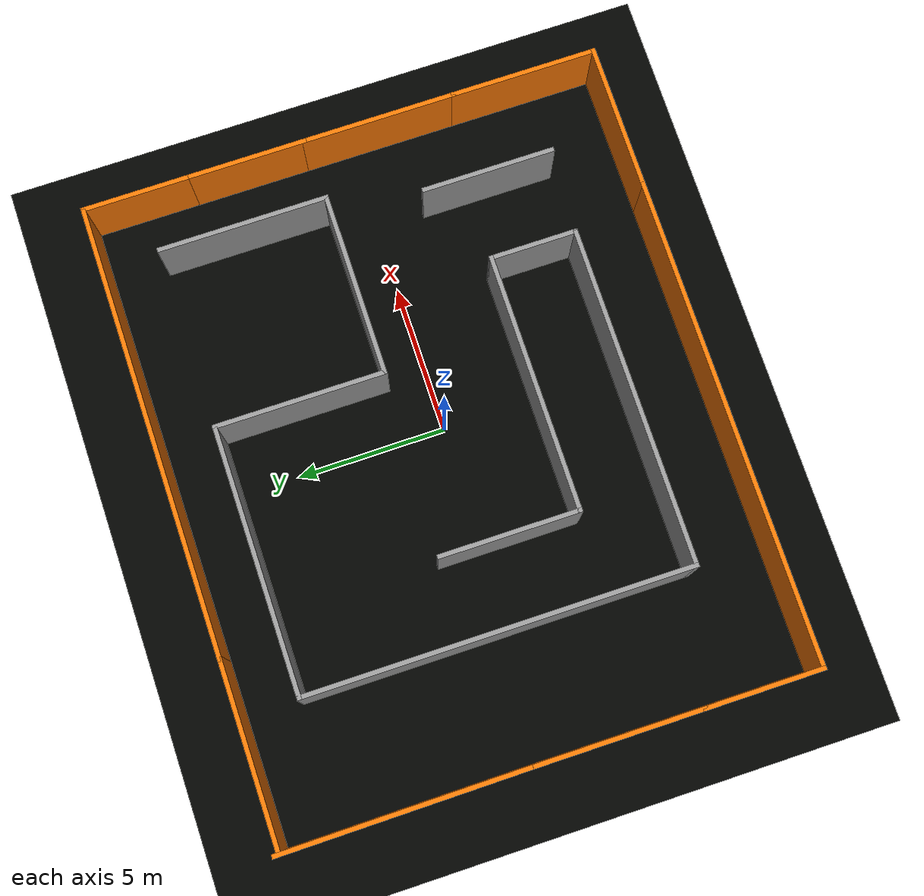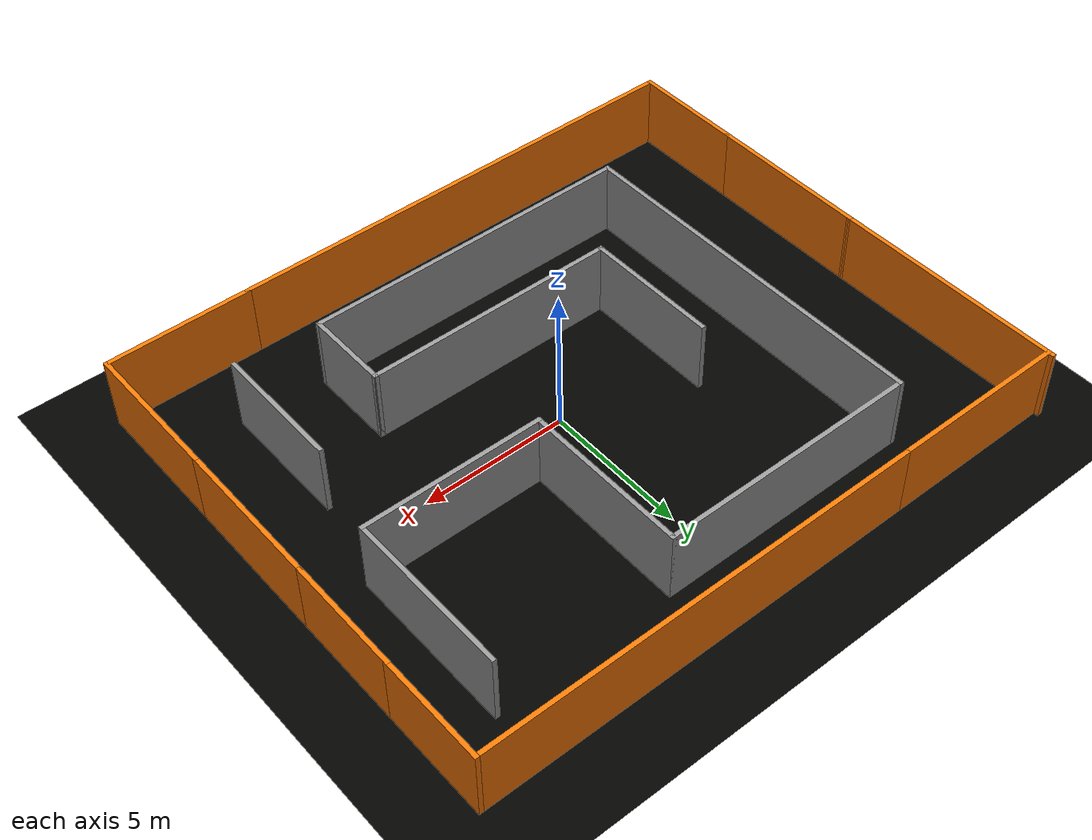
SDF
<sdf version="1.7">
 <world name="default">
  <light name="sun" type="directional">
   <pose>0 0 10 0 -0 0</pose>
   <diffuse>0.8 0.8 0.8 1</diffuse>
   <specular>0.2 0.2 0.2 1</specular>
   <attenuation>
    <range>1000</range>
    <constant>0.9</constant>
    <linear>0.01</linear>
    <quadratic>0.001</quadratic>
   </attenuation>
   <direction>-0.5 0.1 -0.9</direction>
   <spot><inner_angle>0</inner_angle><outer_angle>0</outer_angle><falloff>0</falloff></spot>
  </light>
  <model name="ground_plane">
   <static>1</static>
   <link name="link">
    <collision name="collision">
     <geometry><plane><normal>0 0 1</normal><size>100 100</size></plane></geometry>
     <surface>
      <contact><collide_bitmask>65535</collide_bitmask></contact>
      <friction><ode><mu>100</mu><mu2>50</mu2></ode></friction>
     </surface>
    </collision>
    <visual name="target_visual_1">
     <geometry><sphere><radius>0.2</radius></sphere></geometry>
     <material><ambient>1 0.1 4 1</ambient><diffuse>1 2 0 1</diffuse></material>
     <pose>3 0 1 0 0 0</pose>
     <cast_shadows>0</cast_shadows>
    </visual>
    <visual name="visual">
     <cast_shadows>0</cast_shadows>
     <geometry><plane><normal>0 0 1</normal><size>100 100</size></plane></geometry>
     <material>
      <script><uri>file://media/materials/scripts/gazebo.material</uri><name>Gazebo/Grey</name></script>
     </material>
    </visual>
   </link>
  </model>
  <gravity>0 0 -9.8</gravity>
  <magnetic_field>6e-06 2.3e-05 -4.2e-05</magnetic_field>
  <atmosphere type="adiabatic"/>
  <physics type="ode">
   <max_step_size>0.001</max_step_size>
   <real_time_factor>1</real_time_factor>
   <real_time_update_rate>1000</real_time_update_rate>
  </physics>
  <scene><ambient>0.4 0.4 0.4 1</ambient><background>0.7 0.7 0.7 1</background><shadows>1</shadows></scene>
  <spherical_coordinates>
   <surface_model>EARTH_WGS84</surface_model>
   <latitude_deg>0</latitude_deg>
   <longitude_deg>0</longitude_deg>
   <elevation>0</elevation>
   <heading_deg>0</heading_deg>
  </spherical_coordinates>
  <model name="labirent">
   <pose>-0.573117 0.293484 0 0 -0 0</pose>
   <link name="Wall_12">
    <collision name="Wall_12_Collision">
     <geometry><box><size>5.75 0.15 2.5</size></box></geometry>
     <pose>0 0 1.25 0 -0 0</pose>
    </collision>
    <visual name="Wall_12_Visual">
     <pose>0 0 1.25 0 -0 0</pose>
     <geometry><box><size>5.75 0.15 2.5</size></box></geometry>
     <material>
      <script><uri>file://media/materials/scripts/gazebo.material</uri><name>Gazebo/Grey</name></script>
      <ambient>0.996078 0.47451 0.0196078 1</ambient>
     </material>
     <meta><layer>0</layer></meta>
    </visual>
    <pose>-10.5797 -2.12516 0 0 -0 -1.5708</pose>
   </link>
   <link name="Wall_14">
    <collision name="Wall_14_Collision">
     <geometry><box><size>4 0.15 2.5</size></box></geometry>
     <pose>0 0 1.25 0 -0 0</pose>
    </collision>
    <visual name="Wall_14_Visual">
     <pose>0 0 1.25 0 -0 0</pose>
     <geometry><box><size>4 0.15 2.5</size></box></geometry>
     <material>
      <script><uri>file://media/materials/scripts/gazebo.material</uri><name>Gazebo/Grey</name></script>
      <ambient>0.996078 0.47451 0.0196078 1</ambient>
     </material>
     <meta><layer>0</layer></meta>
    </visual>
    <pose>-10.5797 -6.85016 0 0 -0 -1.5708</pose>
   </link>
   <link name="Wall_15">
    <collision name="Wall_15_Collision">
     <geometry><box><size>16.5 0.15 2.5</size></box></geometry>
     <pose>0 0 1.25 0 -0 0</pose>
    </collision>
    <visual name="Wall_15_Visual">
     <pose>0 0 1.25 0 -0 0</pose>
     <geometry><box><size>16.5 0.15 2.5</size></box></geometry>
     <material>
      <script><uri>file://media/materials/scripts/gazebo.material</uri><name>Gazebo/Grey</name></script>
      <ambient>0.996078 0.47451 0.0196078 1</ambient>
     </material>
     <meta><layer>0</layer></meta>
    </visual>
    <pose>-2.4047 -8.77516 0 0 -0 0</pose>
   </link>
   <link name="Wall_17">
    <collision name="Wall_17_Collision">
     <geometry><box><size>5 0.15 2.5</size></box></geometry>
     <pose>0 0 1.25 0 -0 0</pose>
    </collision>
    <visual name="Wall_17_Visual">
     <pose>0 0 1.25 0 -0 0</pose>
     <geometry><box><size>5 0.15 2.5</size></box></geometry>
     <material>
      <script><uri>file://media/materials/scripts/gazebo.material</uri><name>Gazebo/Grey</name></script>
      <ambient>0.996078 0.47451 0.0196078 1</ambient>
     </material>
     <meta><layer>0</layer></meta>
    </visual>
    <pose>8.1953 -8.77516 0 0 -0 0</pose>
   </link>
   <link name="Wall_18">
    <collision name="Wall_18_Collision">
     <geometry><box><size>5 0.15 2.5</size></box></geometry>
     <pose>0 0 1.25 0 -0 0</pose>
    </collision>
    <visual name="Wall_18_Visual">
     <pose>0 0 1.25 0 -0 0</pose>
     <geometry><box><size>5 0.15 2.5</size></box></geometry>
     <material>
      <script><uri>file://media/materials/scripts/gazebo.material</uri><name>Gazebo/Grey</name></script>
      <ambient>0.996078 0.47451 0.0196078 1</ambient>
     </material>
     <meta><layer>0</layer></meta>
    </visual>
    <pose>10.6203 -6.35016 0 0 -0 1.5708</pose>
   </link>
   <link name="Wall_20">
    <collision name="Wall_20_Collision">
     <geometry><box><size>5.25 0.15 2.5</size></box></geometry>
     <pose>0 0 1.25 0 -0 0</pose>
    </collision>
    <visual name="Wall_20_Visual">
     <pose>0 0 1.25 0 -0 0</pose>
     <geometry><box><size>5.25 0.15 2.5</size></box></geometry>
     <material>
      <script><uri>file://media/materials/scripts/gazebo.material</uri><name>Gazebo/Grey</name></script>
      <ambient>0.996078 0.47451 0.0196078 1</ambient>
     </material>
     <meta><layer>0</layer></meta>
    </visual>
    <pose>10.6203 -1.37516 0 0 -0 1.5708</pose>
   </link>
   <link name="Wall_22">
    <collision name="Wall_22_Collision">
     <geometry><box><size>4 0.15 2.5</size></box></geometry>
     <pose>0 0 1.25 0 -0 0</pose>
    </collision>
    <visual name="Wall_22_Visual">
     <pose>0 0 1.25 0 -0 0</pose>
     <geometry><box><size>4 0.15 2.5</size></box></geometry>
     <material>
      <script><uri>file://media/materials/scripts/gazebo.material</uri><name>Gazebo/Grey</name></script>
      <ambient>0.996078 0.47451 0.0196078 1</ambient>
     </material>
     <meta><layer>0</layer></meta>
    </visual>
    <pose>10.6203 3.09984 0 0 -0 1.5708</pose>
   </link>
   <link name="Wall_24">
    <collision name="Wall_24_Collision">
     <geometry><box><size>3.75 0.15 2.5</size></box></geometry>
     <pose>0 0 1.25 0 -0 0</pose>
    </collision>
    <visual name="Wall_24_Visual">
     <pose>0 0 1.25 0 -0 0</pose>
     <geometry><box><size>3.75 0.15 2.5</size></box></geometry>
     <material>
      <script><uri>file://media/materials/scripts/gazebo.material</uri><name>Gazebo/Grey</name></script>
      <ambient>0.996078 0.47451 0.0196078 1</ambient>
     </material>
     <meta><layer>0</layer></meta>
    </visual>
    <pose>10.6203 6.82484 0 0 -0 1.5708</pose>
   </link>
   <link name="Wall_25">
    <collision name="Wall_25_Collision">
     <geometry><box><size>15.2902 0.15 2.5</size></box></geometry>
     <pose>0 0 1.25 0 -0 0</pose>
    </collision>
    <visual name="Wall_25_Visual">
     <pose>0 0 1.25 0 -0 0</pose>
     <geometry><box><size>15.2902 0.15 2.5</size></box></geometry>
     <material>
      <script><uri>file://media/materials/scripts/gazebo.material</uri><name>Gazebo/Grey</name></script>
      <ambient>0.996078 0.47451 0.0196078 1</ambient>
     </material>
     <meta><layer>0</layer></meta>
    </visual>
    <pose>3.05018 8.62484 0 0 -0 3.14159</pose>
   </link>
   <link name="Wall_27">
    <collision name="Wall_27_Collision">
     <geometry><box><size>8.25 0.15 2.5</size></box></geometry>
     <pose>0 0 1.25 0 -0 0</pose>
    </collision>
    <visual name="Wall_27_Visual">
     <pose>0 0 1.25 0 -0 0</pose>
     <geometry><box><size>8.25 0.15 2.5</size></box></geometry>
     <material>
      <script><uri>file://media/materials/scripts/gazebo.material</uri><name>Gazebo/Grey</name></script>
      <ambient>0.996078 0.47451 0.0196078 1</ambient>
     </material>
     <meta><layer>0</layer></meta>
    </visual>
    <pose>-10.5998 4.72484 0 0 -0 1.57576</pose>
   </link>
   <link name="Wall_30">
    <collision name="Wall_30_Collision">
     <geometry><box><size>6.25 0.15 2.5</size></box></geometry>
     <pose>0 0 1.25 0 -0 0</pose>
    </collision>
    <visual name="Wall_30_Visual">
     <pose>0 0 1.25 0 -0 0</pose>
     <geometry><box><size>6.25 0.15 2.5</size></box></geometry>
     <material>
      <script><uri>file://media/materials/scripts/gazebo.material</uri><name>Gazebo/Grey</name></script>
      <ambient>0.996078 0.47451 0.0196078 1</ambient>
     </material>
     <meta><layer>0</layer></meta>
    </visual>
    <pose>-7.56993 8.62484 0 0 -0 3.14159</pose>
   </link>
   <link name="Wall_32">
    <collision name="Wall_32_Collision">
     <geometry><box><size>4.75 0.15 2.5</size></box></geometry>
     <pose>0 0 1.25 0 -0 0</pose>
    </collision>
    <visual name="Wall_32_Visual">
     <pose>0 0 1.25 0 -0 0</pose>
     <geometry><box><size>4.75 0.15 2.5</size></box></geometry>
     <material>
      <script><uri>file://media/materials/scripts/gazebo.material</uri><name>Gazebo/Grey</name></script>
      <ambient>1 1 1 1</ambient>
     </material>
     <meta><layer>0</layer></meta>
    </visual>
    <pose>-3.6416 -1.02606 0 0 -0 -1.5708</pose>
   </link>
   <link name="Wall_33">
    <collision name="Wall_33_Collision">
     <geometry><box><size>8.75 0.15 2.5</size></box></geometry>
     <pose>0 0 1.25 0 -0 0</pose>
    </collision>
    <visual name="Wall_33_Visual">
     <pose>0 0 1.25 0 -0 0</pose>
     <geometry><box><size>8.75 0.15 2.5</size></box></geometry>
     <material>
      <script><uri>file://media/materials/scripts/gazebo.material</uri><name>Gazebo/Grey</name></script>
      <ambient>1 1 1 1</ambient>
     </material>
     <meta><layer>0</layer></meta>
    </visual>
    <pose>0.658405 -3.32606 0 0 -0 0</pose>
   </link>
   <link name="Wall_34">
    <collision name="Wall_34_Collision">
     <geometry><box><size>3 0.15 2.5</size></box></geometry>
     <pose>0 0 1.25 0 -0 0</pose>
    </collision>
    <visual name="Wall_34_Visual">
     <pose>0 0 1.25 0 -0 0</pose>
     <geometry><box><size>3 0.15 2.5</size></box></geometry>
     <material>
      <script><uri>file://media/materials/scripts/gazebo.material</uri><name>Gazebo/Grey</name></script>
      <ambient>1 1 1 1</ambient>
     </material>
     <meta><layer>0</layer></meta>
    </visual>
    <pose>4.9584 -4.75106 0 0 -0 -1.5708</pose>
   </link>
   <link name="Wall_35">
    <collision name="Wall_35_Collision">
     <geometry><box><size>11.5 0.15 2.5</size></box></geometry>
     <pose>0 0 1.25 0 -0 0</pose>
    </collision>
    <visual name="Wall_35_Visual">
     <pose>0 0 1.25 0 -0 0</pose>
     <geometry><box><size>11.5 0.15 2.5</size></box></geometry>
     <material>
      <script><uri>file://media/materials/scripts/gazebo.material</uri><name>Gazebo/Grey</name></script>
      <ambient>1 1 1 1</ambient>
     </material>
     <meta><layer>0</layer></meta>
    </visual>
    <pose>-0.716595 -6.17606 0 0 -0 3.14159</pose>
   </link>
   <link name="Wall_36">
    <collision name="Wall_36_Collision">
     <geometry><box><size>13 0.15 2.5</size></box></geometry>
     <pose>0 0 1.25 0 -0 0</pose>
    </collision>
    <visual name="Wall_36_Visual">
     <pose>0 0 1.25 0 -0 0</pose>
     <geometry><box><size>13 0.15 2.5</size></box></geometry>
     <material>
      <script><uri>file://media/materials/scripts/gazebo.material</uri><name>Gazebo/Grey</name></script>
      <ambient>1 1 1 1</ambient>
     </material>
     <meta><layer>0</layer></meta>
    </visual>
    <pose>-6.39159 0.248941 0 0 -0 1.5708</pose>
   </link>
   <link name="Wall_37">
    <collision name="Wall_37_Collision">
     <geometry><box><size>9 0.15 2.5</size></box></geometry>
     <pose>0 0 1.25 0 -0 0</pose>
    </collision>
    <visual name="Wall_37_Visual">
     <pose>0 0 1.25 0 -0 0</pose>
     <geometry><box><size>9 0.15 2.5</size></box></geometry>
     <material>
      <script><uri>file://media/materials/scripts/gazebo.material</uri><name>Gazebo/Grey</name></script>
      <ambient>1 1 1 1</ambient>
     </material>
     <meta><layer>0</layer></meta>
    </visual>
    <pose>-1.9666 6.67394 0 0 -0 0</pose>
   </link>
   <link name="Wall_38">
    <collision name="Wall_38_Collision">
     <geometry><box><size>5.75 0.15 2.5</size></box></geometry>
     <pose>0 0 1.25 0 -0 0</pose>
    </collision>
    <visual name="Wall_38_Visual">
     <pose>0 0 1.25 0 -0 0</pose>
     <geometry><box><size>5.75 0.15 2.5</size></box></geometry>
     <material>
      <script><uri>file://media/materials/scripts/gazebo.material</uri><name>Gazebo/Grey</name></script>
      <ambient>1 1 1 1</ambient>
     </material>
     <meta><layer>0</layer></meta>
    </visual>
    <pose>2.4584 3.87394 0 0 -0 -1.5708</pose>
   </link>
   <link name="Wall_39">
    <collision name="Wall_39_Collision">
     <geometry><box><size>6.25 0.15 2.5</size></box></geometry>
     <pose>0 0 1.25 0 -0 0</pose>
    </collision>
    <visual name="Wall_39_Visual">
     <pose>0 0 1.25 0 -0 0</pose>
     <geometry><box><size>6.25 0.15 2.5</size></box></geometry>
     <material>
      <script><uri>file://media/materials/scripts/gazebo.material</uri><name>Gazebo/Grey</name></script>
      <ambient>1 1 1 1</ambient>
     </material>
     <meta><layer>0</layer></meta>
    </visual>
    <pose>5.5084 1.07394 0 0 -0 0</pose>
   </link>
   <link name="Wall_40">
    <collision name="Wall_40_Collision">
     <geometry><box><size>5.75 0.15 2.5</size></box></geometry>
     <pose>0 0 1.25 0 -0 0</pose>
    </collision>
    <visual name="Wall_40_Visual">
     <pose>0 0 1.25 0 -0 0</pose>
     <geometry><box><size>5.75 0.15 2.5</size></box></geometry>
     <material>
      <script><uri>file://media/materials/scripts/gazebo.material</uri><name>Gazebo/Grey</name></script>
      <ambient>1 1 1 1</ambient>
     </material>
     <meta><layer>0</layer></meta>
    </visual>
    <pose>8.55841 3.87394 0 0 -0 1.5708</pose>
   </link>
   <link name="Wall_42">
    <collision name="Wall_42_Collision">
     <geometry><box><size>4.5 0.15 2.5</size></box></geometry>
     <pose>0 0 1.25 0 -0 0</pose>
    </collision>
    <visual name="Wall_42_Visual">
     <pose>0 0 1.25 0 -0 0</pose>
     <geometry><box><size>4.5 0.15 2.5</size></box></geometry>
     <material>
      <script><uri>file://media/materials/scripts/gazebo.material</uri><name>Gazebo/Grey</name></script>
      <ambient>1 1 1 1</ambient>
     </material>
     <meta><layer>0</layer></meta>
    </visual>
    <pose>7.80733 -4.17796 0 0 -0 -1.5708</pose>
   </link>
   <static>1</static>
   <visual name="target_visual_1">
    <geometry><sphere><radius>0.2</radius></sphere></geometry>
    <material><ambient>1 0.1 4 1</ambient><diffuse>1 2 0 1</diffuse></material>
    <pose>3 0 1 0 0 0</pose>
    <cast_shadows>0</cast_shadows>
   </visual>
   <visual name="target_visual_2">
    <geometry><sphere><radius>0.2</radius></sphere></geometry>
    <material><ambient>1 1 3 1</ambient><diffuse>1 0 0 1</diffuse></material>
    <pose>0 -3 1 0 0 0</pose>
    <cast_shadows>0</cast_shadows>
   </visual>
   <visual name="target_visual_3">
    <geometry><sphere><radius>0.2</radius></sphere></geometry>
    <material><ambient>1 3 1 1</ambient><diffuse>1 0 1 1</diffuse></material>
    <pose>-3 0 1 0 0 0</pose>
    <cast_shadows>0</cast_shadows>
   </visual>
  </model>
 </world>
</sdf>
